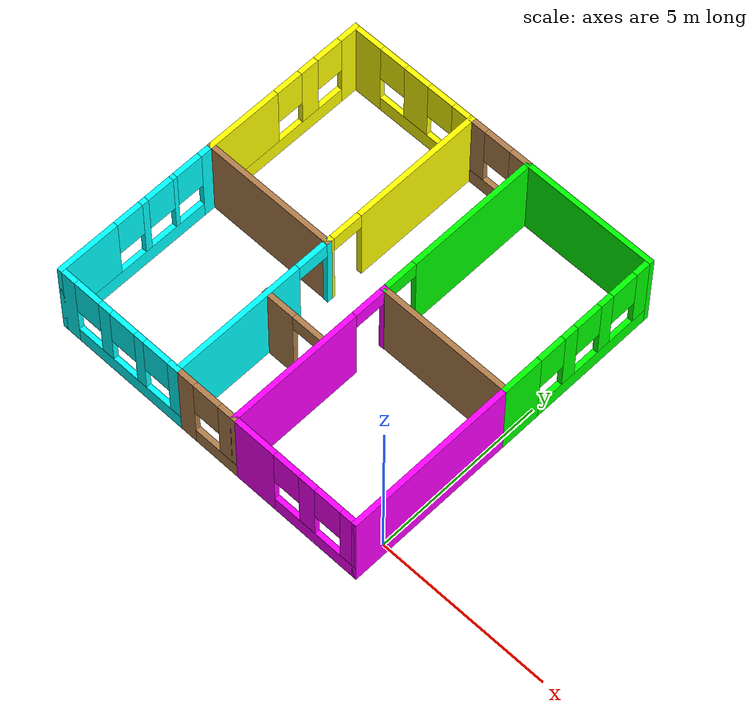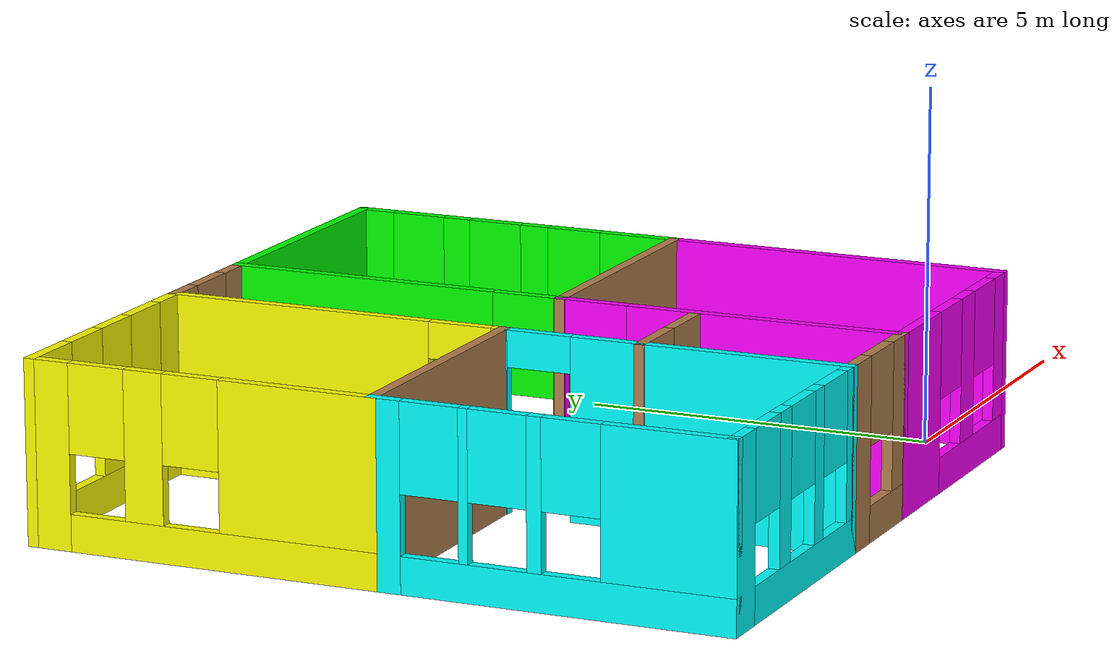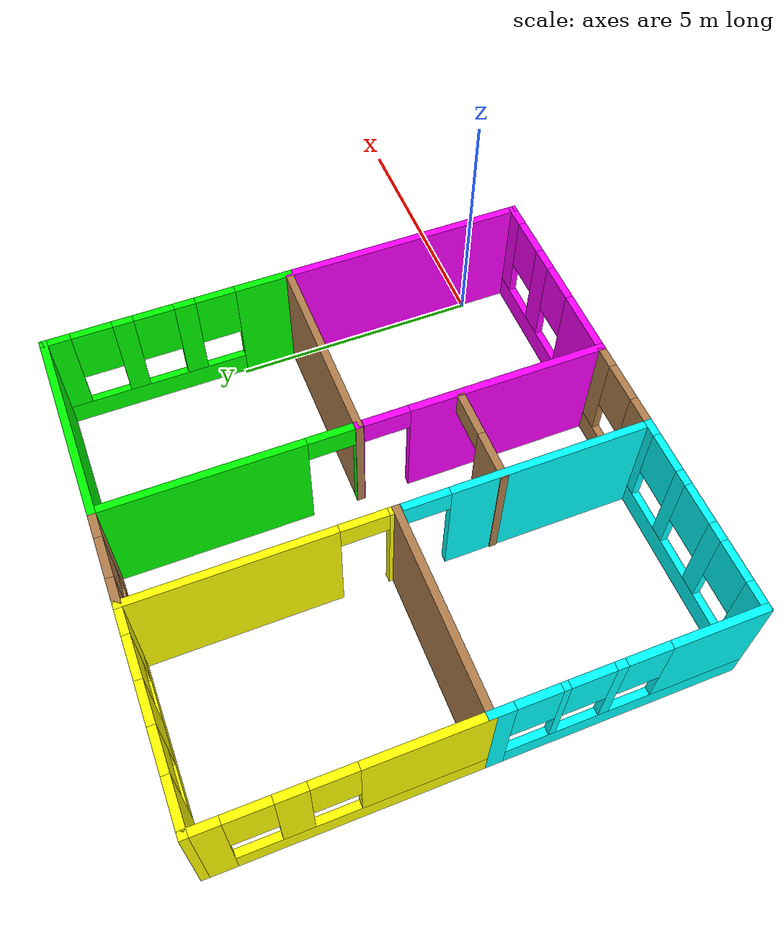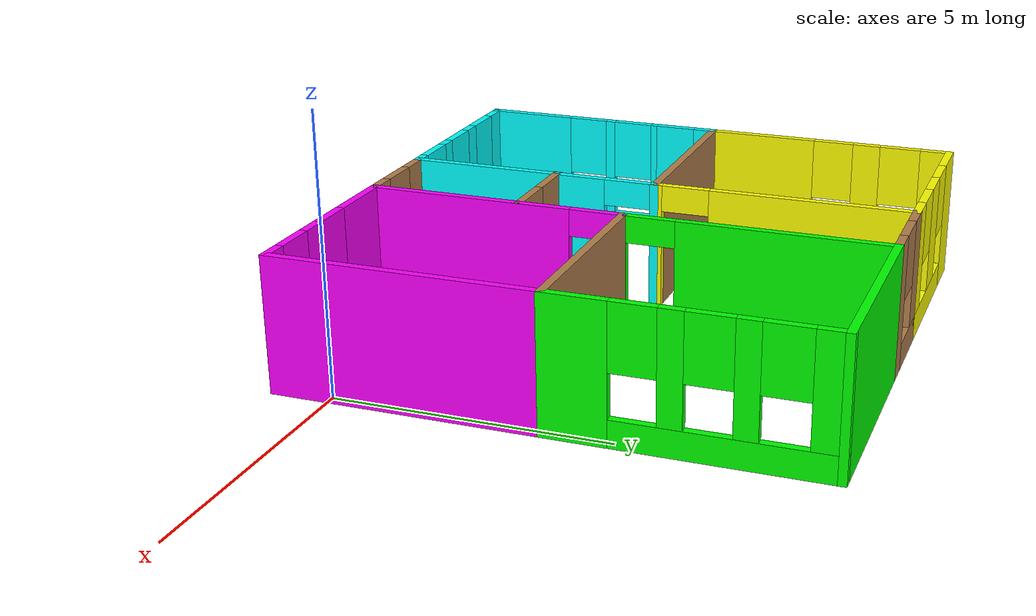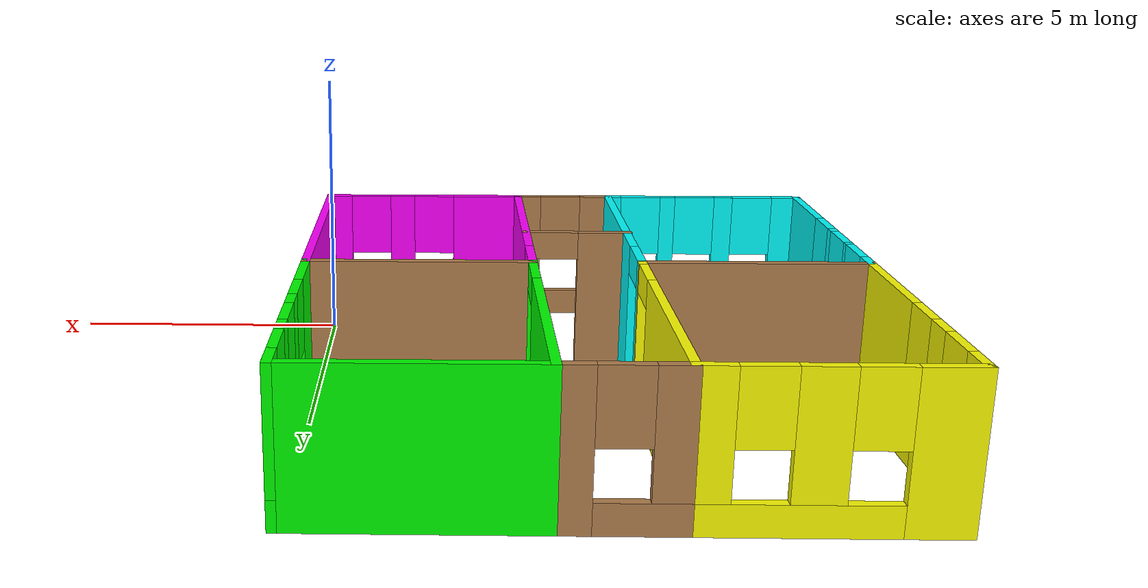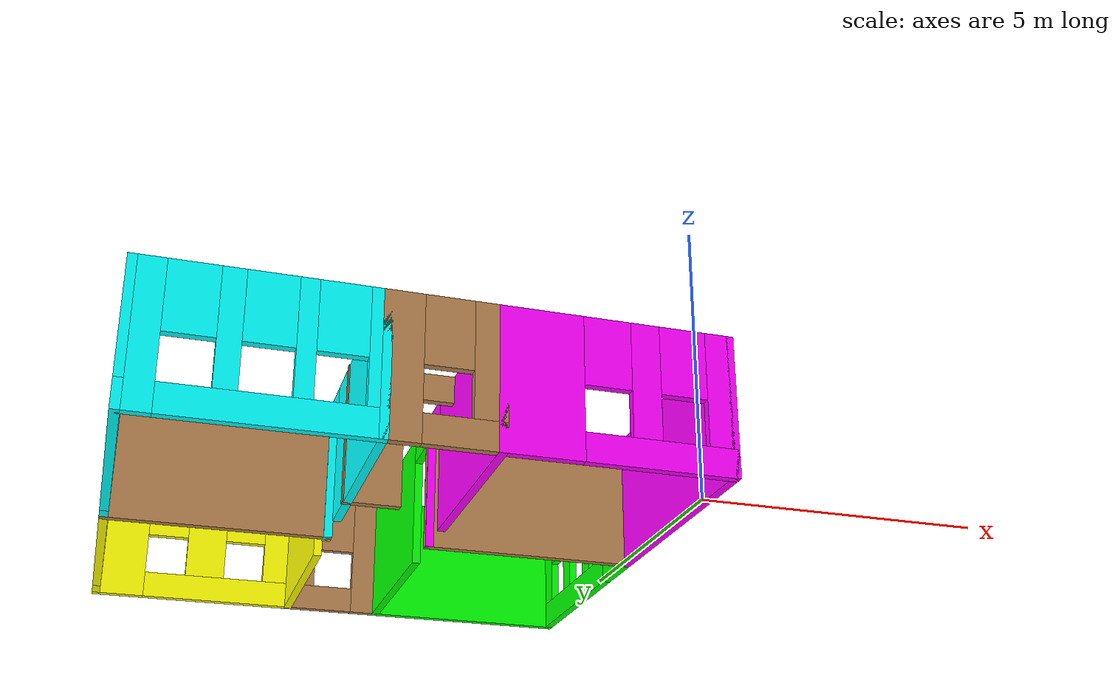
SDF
<?xml version='1.0'?>
<sdf version='1.6'>
  <model name='mybuilding'>
    <pose frame=''>-4.65558 3.83994 0 0 -0 0</pose>
    <link name='Wall_10'>
      <pose frame=''>-4.775 -2.425 0 0 0 -1.5708</pose>
      <visual name='Wall_10_Visual_0'>
        <pose frame=''>-2.26286 0 1.25 0 -0 0</pose>
        <geometry>
          <box>
            <size>0.47429 0.15 2.5</size>
          </box>
        </geometry>
        <material>
          <script>
            <uri>file://media/materials/scripts/gazebo.material</uri>
            <name>Gazebo/Grey</name>
          </script>
          <ambient>0 1 1 1</ambient>
        </material>
        <meta>
          <layer>0</layer>
        </meta>
      </visual>
      <collision name='Wall_10_Collision_0'>
        <geometry>
          <box>
            <size>0.47429 0.15 2.5</size>
          </box>
        </geometry>
        <pose frame=''>-2.26286 0 1.25 0 -0 0</pose>
      </collision>
      <visual name='Wall_10_Visual_1'>
        <pose frame=''>0.237145 0 0.25 0 -0 0</pose>
        <geometry>
          <box>
            <size>4.52571 0.15 0.5</size>
          </box>
        </geometry>
        <material>
          <script>
            <uri>file://media/materials/scripts/gazebo.material</uri>
            <name>Gazebo/Grey</name>
          </script>
          <ambient>0 1 1 1</ambient>
        </material>
        <meta>
          <layer>0</layer>
        </meta>
      </visual>
      <collision name='Wall_10_Collision_1'>
        <geometry>
          <box>
            <size>4.52571 0.15 0.5</size>
          </box>
        </geometry>
        <pose frame=''>0.237145 0 0.25 0 -0 0</pose>
      </collision>
      <visual name='Wall_10_Visual_2'>
        <pose frame=''>-1.16222 0 1.5 0 -0 0</pose>
        <geometry>
          <box>
            <size>0.126973 0.15 2</size>
          </box>
        </geometry>
        <material>
          <script>
            <uri>file://media/materials/scripts/gazebo.material</uri>
            <name>Gazebo/Grey</name>
          </script>
          <ambient>0 1 1 1</ambient>
        </material>
        <meta>
          <layer>0</layer>
        </meta>
      </visual>
      <collision name='Wall_10_Collision_2'>
        <geometry>
          <box>
            <size>0.126973 0.15 2</size>
          </box>
        </geometry>
        <pose frame=''>-1.16222 0 1.5 0 -0 0</pose>
      </collision>
      <visual name='Wall_10_Visual_3'>
        <pose frame=''>-0.20027 0 1.5 0 -0 0</pose>
        <geometry>
          <box>
            <size>0.196934 0.15 2</size>
          </box>
        </geometry>
        <material>
          <script>
            <uri>file://media/materials/scripts/gazebo.material</uri>
            <name>Gazebo/Grey</name>
          </script>
          <ambient>0 1 1 1</ambient>
        </material>
        <meta>
          <layer>0</layer>
        </meta>
      </visual>
      <collision name='Wall_10_Collision_3'>
        <geometry>
          <box>
            <size>0.196934 0.15 2</size>
          </box>
        </geometry>
        <pose frame=''>-0.20027 0 1.5 0 -0 0</pose>
      </collision>
      <visual name='Wall_10_Visual_4'>
        <pose frame=''>1.5991 0 1.5 0 -0 0</pose>
        <geometry>
          <box>
            <size>1.8018 0.15 2</size>
          </box>
        </geometry>
        <material>
          <script>
            <uri>file://media/materials/scripts/gazebo.material</uri>
            <name>Gazebo/Grey</name>
          </script>
          <ambient>0 1 1 1</ambient>
        </material>
        <meta>
          <layer>0</layer>
        </meta>
      </visual>
      <collision name='Wall_10_Collision_4'>
        <geometry>
          <box>
            <size>1.8018 0.15 2</size>
          </box>
        </geometry>
        <pose frame=''>1.5991 0 1.5 0 -0 0</pose>
      </collision>
      <visual name='Wall_10_Visual_5'>
        <pose frame=''>-1.62571 0 1.9 0 -0 0</pose>
        <geometry>
          <box>
            <size>0.8 0.15 1.2</size>
          </box>
        </geometry>
        <material>
          <script>
            <uri>file://media/materials/scripts/gazebo.material</uri>
            <name>Gazebo/Grey</name>
          </script>
          <ambient>0 1 1 1</ambient>
        </material>
        <meta>
          <layer>0</layer>
        </meta>
      </visual>
      <collision name='Wall_10_Collision_5'>
        <geometry>
          <box>
            <size>0.8 0.15 1.2</size>
          </box>
        </geometry>
        <pose frame=''>-1.62571 0 1.9 0 -0 0</pose>
      </collision>
      <visual name='Wall_10_Visual_6'>
        <pose frame=''>-0.698737 0 1.9 0 -0 0</pose>
        <geometry>
          <box>
            <size>0.8 0.15 1.2</size>
          </box>
        </geometry>
        <material>
          <script>
            <uri>file://media/materials/scripts/gazebo.material</uri>
            <name>Gazebo/Grey</name>
          </script>
          <ambient>0 1 1 1</ambient>
        </material>
        <meta>
          <layer>0</layer>
        </meta>
      </visual>
      <collision name='Wall_10_Collision_6'>
        <geometry>
          <box>
            <size>0.8 0.15 1.2</size>
          </box>
        </geometry>
        <pose frame=''>-0.698737 0 1.9 0 -0 0</pose>
      </collision>
      <visual name='Wall_10_Visual_7'>
        <pose frame=''>0.298197 0 1.9 0 -0 0</pose>
        <geometry>
          <box>
            <size>0.8 0.15 1.2</size>
          </box>
        </geometry>
        <material>
          <script>
            <uri>file://media/materials/scripts/gazebo.material</uri>
            <name>Gazebo/Grey</name>
          </script>
          <ambient>0 1 1 1</ambient>
        </material>
        <meta>
          <layer>0</layer>
        </meta>
      </visual>
      <collision name='Wall_10_Collision_7'>
        <geometry>
          <box>
            <size>0.8 0.15 1.2</size>
          </box>
        </geometry>
        <pose frame=''>0.298197 0 1.9 0 -0 0</pose>
      </collision>
    </link>
    <link name='Wall_11'>
      <pose frame=''>-2.85 -4.85 0 0 -0 0</pose>
      <visual name='Wall_11_Visual_0'>
        <pose frame=''>-1.70776 0 1.25 0 -0 0</pose>
        <geometry>
          <box>
            <size>0.584483 0.15 2.5</size>
          </box>
        </geometry>
        <material>
          <script>
            <uri>file://media/materials/scripts/gazebo.material</uri>
            <name>Gazebo/Grey</name>
          </script>
          <ambient>0 1 1 1</ambient>
        </material>
        <meta>
          <layer>0</layer>
        </meta>
      </visual>
      <collision name='Wall_11_Collision_0'>
        <geometry>
          <box>
            <size>0.584483 0.15 2.5</size>
          </box>
        </geometry>
        <pose frame=''>-1.70776 0 1.25 0 -0 0</pose>
      </collision>
      <visual name='Wall_11_Visual_1'>
        <pose frame=''>0.292241 0 0.25 0 -0 0</pose>
        <geometry>
          <box>
            <size>3.41552 0.15 0.5</size>
          </box>
        </geometry>
        <material>
          <script>
            <uri>file://media/materials/scripts/gazebo.material</uri>
            <name>Gazebo/Grey</name>
          </script>
          <ambient>0 1 1 1</ambient>
        </material>
        <meta>
          <layer>0</layer>
        </meta>
      </visual>
      <collision name='Wall_11_Collision_1'>
        <geometry>
          <box>
            <size>3.41552 0.15 0.5</size>
          </box>
        </geometry>
        <pose frame=''>0.292241 0 0.25 0 -0 0</pose>
      </collision>
      <visual name='Wall_11_Visual_2'>
        <pose frame=''>-0.4296 0 1.5 0 -0 0</pose>
        <geometry>
          <box>
            <size>0.371834 0.15 2</size>
          </box>
        </geometry>
        <material>
          <script>
            <uri>file://media/materials/scripts/gazebo.material</uri>
            <name>Gazebo/Grey</name>
          </script>
          <ambient>0 1 1 1</ambient>
        </material>
        <meta>
          <layer>0</layer>
        </meta>
      </visual>
      <collision name='Wall_11_Collision_2'>
        <geometry>
          <box>
            <size>0.371834 0.15 2</size>
          </box>
        </geometry>
        <pose frame=''>-0.4296 0 1.5 0 -0 0</pose>
      </collision>
      <visual name='Wall_11_Visual_3'>
        <pose frame=''>0.707254 0 1.5 0 -0 0</pose>
        <geometry>
          <box>
            <size>0.301874 0.15 2</size>
          </box>
        </geometry>
        <material>
          <script>
            <uri>file://media/materials/scripts/gazebo.material</uri>
            <name>Gazebo/Grey</name>
          </script>
          <ambient>0 1 1 1</ambient>
        </material>
        <meta>
          <layer>0</layer>
        </meta>
      </visual>
      <collision name='Wall_11_Collision_3'>
        <geometry>
          <box>
            <size>0.301874 0.15 2</size>
          </box>
        </geometry>
        <pose frame=''>0.707254 0 1.5 0 -0 0</pose>
      </collision>
      <visual name='Wall_11_Visual_4'>
        <pose frame=''>1.8291 0 1.5 0 -0 0</pose>
        <geometry>
          <box>
            <size>0.341809 0.15 2</size>
          </box>
        </geometry>
        <material>
          <script>
            <uri>file://media/materials/scripts/gazebo.material</uri>
            <name>Gazebo/Grey</name>
          </script>
          <ambient>0 1 1 1</ambient>
        </material>
        <meta>
          <layer>0</layer>
        </meta>
      </visual>
      <collision name='Wall_11_Collision_4'>
        <geometry>
          <box>
            <size>0.341809 0.15 2</size>
          </box>
        </geometry>
        <pose frame=''>1.8291 0 1.5 0 -0 0</pose>
      </collision>
      <visual name='Wall_11_Visual_5'>
        <pose frame=''>-1.01552 0 1.9 0 -0 0</pose>
        <geometry>
          <box>
            <size>0.8 0.15 1.2</size>
          </box>
        </geometry>
        <material>
          <script>
            <uri>file://media/materials/scripts/gazebo.material</uri>
            <name>Gazebo/Grey</name>
          </script>
          <ambient>0 1 1 1</ambient>
        </material>
        <meta>
          <layer>0</layer>
        </meta>
      </visual>
      <collision name='Wall_11_Collision_5'>
        <geometry>
          <box>
            <size>0.8 0.15 1.2</size>
          </box>
        </geometry>
        <pose frame=''>-1.01552 0 1.9 0 -0 0</pose>
      </collision>
      <visual name='Wall_11_Visual_6'>
        <pose frame=''>0.156317 0 1.9 0 -0 0</pose>
        <geometry>
          <box>
            <size>0.8 0.15 1.2</size>
          </box>
        </geometry>
        <material>
          <script>
            <uri>file://media/materials/scripts/gazebo.material</uri>
            <name>Gazebo/Grey</name>
          </script>
          <ambient>0 1 1 1</ambient>
        </material>
        <meta>
          <layer>0</layer>
        </meta>
      </visual>
      <collision name='Wall_11_Collision_6'>
        <geometry>
          <box>
            <size>0.8 0.15 1.2</size>
          </box>
        </geometry>
        <pose frame=''>0.156317 0 1.9 0 -0 0</pose>
      </collision>
      <visual name='Wall_11_Visual_7'>
        <pose frame=''>1.25819 0 1.9 0 -0 0</pose>
        <geometry>
          <box>
            <size>0.8 0.15 1.2</size>
          </box>
        </geometry>
        <material>
          <script>
            <uri>file://media/materials/scripts/gazebo.material</uri>
            <name>Gazebo/Grey</name>
          </script>
          <ambient>0 1 1 1</ambient>
        </material>
        <meta>
          <layer>0</layer>
        </meta>
      </visual>
      <collision name='Wall_11_Collision_7'>
        <geometry>
          <box>
            <size>0.8 0.15 1.2</size>
          </box>
        </geometry>
        <pose frame=''>1.25819 0 1.9 0 -0 0</pose>
      </collision>
    </link>
    <link name='Wall_12'>
      <pose frame=''>0 -4.85 0 0 -0 0</pose>
      <visual name='Wall_12_Visual_0'>
        <pose frame=''>-0.673871 0 1.25 0 -0 0</pose>
        <geometry>
          <box>
            <size>0.652257 0.15 2.5</size>
          </box>
        </geometry>
        <material>
          <script>
            <uri>file://media/materials/scripts/gazebo.material</uri>
            <name>Gazebo/Wood</name>
          </script>
          <ambient>1 1 1 1</ambient>
        </material>
        <meta>
          <layer>0</layer>
        </meta>
      </visual>
      <collision name='Wall_12_Collision_0'>
        <geometry>
          <box>
            <size>0.652257 0.15 2.5</size>
          </box>
        </geometry>
        <pose frame=''>-0.673871 0 1.25 0 -0 0</pose>
      </collision>
      <visual name='Wall_12_Visual_1'>
        <pose frame=''>0.326129 0 0.25 0 -0 0</pose>
        <geometry>
          <box>
            <size>1.34774 0.15 0.5</size>
          </box>
        </geometry>
        <material>
          <script>
            <uri>file://media/materials/scripts/gazebo.material</uri>
            <name>Gazebo/Wood</name>
          </script>
          <ambient>1 1 1 1</ambient>
        </material>
        <meta>
          <layer>0</layer>
        </meta>
      </visual>
      <collision name='Wall_12_Collision_1'>
        <geometry>
          <box>
            <size>1.34774 0.15 0.5</size>
          </box>
        </geometry>
        <pose frame=''>0.326129 0 0.25 0 -0 0</pose>
      </collision>
      <visual name='Wall_12_Visual_2'>
        <pose frame=''>0.726129 0 1.5 0 -0 0</pose>
        <geometry>
          <box>
            <size>0.547743 0.15 2</size>
          </box>
        </geometry>
        <material>
          <script>
            <uri>file://media/materials/scripts/gazebo.material</uri>
            <name>Gazebo/Wood</name>
          </script>
          <ambient>1 1 1 1</ambient>
        </material>
        <meta>
          <layer>0</layer>
        </meta>
      </visual>
      <collision name='Wall_12_Collision_2'>
        <geometry>
          <box>
            <size>0.547743 0.15 2</size>
          </box>
        </geometry>
        <pose frame=''>0.726129 0 1.5 0 -0 0</pose>
      </collision>
      <visual name='Wall_12_Visual_3'>
        <pose frame=''>0.052257 0 1.9 0 -0 0</pose>
        <geometry>
          <box>
            <size>0.8 0.15 1.2</size>
          </box>
        </geometry>
        <material>
          <script>
            <uri>file://media/materials/scripts/gazebo.material</uri>
            <name>Gazebo/Wood</name>
          </script>
          <ambient>1 1 1 1</ambient>
        </material>
        <meta>
          <layer>0</layer>
        </meta>
      </visual>
      <collision name='Wall_12_Collision_3'>
        <geometry>
          <box>
            <size>0.8 0.15 1.2</size>
          </box>
        </geometry>
        <pose frame=''>0.052257 0 1.9 0 -0 0</pose>
      </collision>
    </link>
    <link name='Wall_13'>
      <pose frame=''>2.85 -4.85 0 0 -0 0</pose>
      <visual name='Wall_13_Visual_0'>
        <pose frame=''>-1.30461 0 1.25 0 -0 0</pose>
        <geometry>
          <box>
            <size>1.39079 0.15 2.5</size>
          </box>
        </geometry>
        <material>
          <script>
            <uri>file://media/materials/scripts/gazebo.material</uri>
            <name>Gazebo/Grey</name>
          </script>
          <ambient>1 0 1 1</ambient>
        </material>
        <meta>
          <layer>0</layer>
        </meta>
      </visual>
      <collision name='Wall_13_Collision_0'>
        <geometry>
          <box>
            <size>1.39079 0.15 2.5</size>
          </box>
        </geometry>
        <pose frame=''>-1.30461 0 1.25 0 -0 0</pose>
      </collision>
      <visual name='Wall_13_Visual_1'>
        <pose frame=''>0.695393 0 0.25 0 -0 0</pose>
        <geometry>
          <box>
            <size>2.60921 0.15 0.5</size>
          </box>
        </geometry>
        <material>
          <script>
            <uri>file://media/materials/scripts/gazebo.material</uri>
            <name>Gazebo/Grey</name>
          </script>
          <ambient>1 0 1 1</ambient>
        </material>
        <meta>
          <layer>0</layer>
        </meta>
      </visual>
      <collision name='Wall_13_Collision_1'>
        <geometry>
          <box>
            <size>2.60921 0.15 0.5</size>
          </box>
        </geometry>
        <pose frame=''>0.695393 0 0.25 0 -0 0</pose>
      </collision>
      <visual name='Wall_13_Visual_2'>
        <pose frame=''>0.437919 0 1.5 0 -0 0</pose>
        <geometry>
          <box>
            <size>0.494265 0.15 2</size>
          </box>
        </geometry>
        <material>
          <script>
            <uri>file://media/materials/scripts/gazebo.material</uri>
            <name>Gazebo/Grey</name>
          </script>
          <ambient>1 0 1 1</ambient>
        </material>
        <meta>
          <layer>0</layer>
        </meta>
      </visual>
      <collision name='Wall_13_Collision_2'>
        <geometry>
          <box>
            <size>0.494265 0.15 2</size>
          </box>
        </geometry>
        <pose frame=''>0.437919 0 1.5 0 -0 0</pose>
      </collision>
      <visual name='Wall_13_Visual_3'>
        <pose frame=''>1.74253 0 1.5 0 -0 0</pose>
        <geometry>
          <box>
            <size>0.514949 0.15 2</size>
          </box>
        </geometry>
        <material>
          <script>
            <uri>file://media/materials/scripts/gazebo.material</uri>
            <name>Gazebo/Grey</name>
          </script>
          <ambient>1 0 1 1</ambient>
        </material>
        <meta>
          <layer>0</layer>
        </meta>
      </visual>
      <collision name='Wall_13_Collision_3'>
        <geometry>
          <box>
            <size>0.514949 0.15 2</size>
          </box>
        </geometry>
        <pose frame=''>1.74253 0 1.5 0 -0 0</pose>
      </collision>
      <visual name='Wall_13_Visual_4'>
        <pose frame=''>-0.209213 0 1.9 0 -0 0</pose>
        <geometry>
          <box>
            <size>0.8 0.15 1.2</size>
          </box>
        </geometry>
        <material>
          <script>
            <uri>file://media/materials/scripts/gazebo.material</uri>
            <name>Gazebo/Grey</name>
          </script>
          <ambient>1 0 1 1</ambient>
        </material>
        <meta>
          <layer>0</layer>
        </meta>
      </visual>
      <collision name='Wall_13_Collision_4'>
        <geometry>
          <box>
            <size>0.8 0.15 1.2</size>
          </box>
        </geometry>
        <pose frame=''>-0.209213 0 1.9 0 -0 0</pose>
      </collision>
      <visual name='Wall_13_Visual_5'>
        <pose frame=''>1.08505 0 1.9 0 -0 0</pose>
        <geometry>
          <box>
            <size>0.8 0.15 1.2</size>
          </box>
        </geometry>
        <material>
          <script>
            <uri>file://media/materials/scripts/gazebo.material</uri>
            <name>Gazebo/Grey</name>
          </script>
          <ambient>1 0 1 1</ambient>
        </material>
        <meta>
          <layer>0</layer>
        </meta>
      </visual>
      <collision name='Wall_13_Collision_5'>
        <geometry>
          <box>
            <size>0.8 0.15 1.2</size>
          </box>
        </geometry>
        <pose frame=''>1.08505 0 1.9 0 -0 0</pose>
      </collision>
    </link>
    <link name='Wall_14'>
      <collision name='Wall_14_Collision'>
        <geometry>
          <box>
            <size>5 0.15 2.5</size>
          </box>
        </geometry>
        <pose frame=''>0 0 1.25 0 -0 0</pose>
      </collision>
      <visual name='Wall_14_Visual'>
        <pose frame=''>0 0 1.25 0 -0 0</pose>
        <geometry>
          <box>
            <size>5 0.15 2.5</size>
          </box>
        </geometry>
        <material>
          <script>
            <uri>file://media/materials/scripts/gazebo.material</uri>
            <name>Gazebo/Grey</name>
          </script>
          <ambient>1 0 1 1</ambient>
        </material>
        <meta>
          <layer>0</layer>
        </meta>
      </visual>
      <pose frame=''>4.775 -2.425 0 0 -0 1.5708</pose>
    </link>
    <link name='Wall_15'>
      <pose frame=''>4.775 2.425 0 0 -0 1.5708</pose>
      <visual name='Wall_15_Visual_0'>
        <pose frame=''>-1.9078 0 1.25 0 -0 0</pose>
        <geometry>
          <box>
            <size>1.1844 0.15 2.5</size>
          </box>
        </geometry>
        <material>
          <script>
            <uri>file://media/materials/scripts/gazebo.material</uri>
            <name>Gazebo/Grey</name>
          </script>
          <ambient>0 1 0 1</ambient>
        </material>
        <meta>
          <layer>0</layer>
        </meta>
      </visual>
      <collision name='Wall_15_Collision_0'>
        <geometry>
          <box>
            <size>1.1844 0.15 2.5</size>
          </box>
        </geometry>
        <pose frame=''>-1.9078 0 1.25 0 -0 0</pose>
      </collision>
      <visual name='Wall_15_Visual_1'>
        <pose frame=''>0.592199 0 0.25 0 -0 0</pose>
        <geometry>
          <box>
            <size>3.8156 0.15 0.5</size>
          </box>
        </geometry>
        <material>
          <script>
            <uri>file://media/materials/scripts/gazebo.material</uri>
            <name>Gazebo/Grey</name>
          </script>
          <ambient>0 1 0 1</ambient>
        </material>
        <meta>
          <layer>0</layer>
        </meta>
      </visual>
      <collision name='Wall_15_Collision_1'>
        <geometry>
          <box>
            <size>3.8156 0.15 0.5</size>
          </box>
        </geometry>
        <pose frame=''>0.592199 0 0.25 0 -0 0</pose>
      </collision>
      <visual name='Wall_15_Visual_2'>
        <pose frame=''>-0.30345 0 1.5 0 -0 0</pose>
        <geometry>
          <box>
            <size>0.424304 0.15 2</size>
          </box>
        </geometry>
        <material>
          <script>
            <uri>file://media/materials/scripts/gazebo.material</uri>
            <name>Gazebo/Grey</name>
          </script>
          <ambient>0 1 0 1</ambient>
        </material>
        <meta>
          <layer>0</layer>
        </meta>
      </visual>
      <collision name='Wall_15_Collision_2'>
        <geometry>
          <box>
            <size>0.424304 0.15 2</size>
          </box>
        </geometry>
        <pose frame=''>-0.30345 0 1.5 0 -0 0</pose>
      </collision>
      <visual name='Wall_15_Visual_3'>
        <pose frame=''>0.912109 0 1.5 0 -0 0</pose>
        <geometry>
          <box>
            <size>0.406815 0.15 2</size>
          </box>
        </geometry>
        <material>
          <script>
            <uri>file://media/materials/scripts/gazebo.material</uri>
            <name>Gazebo/Grey</name>
          </script>
          <ambient>0 1 0 1</ambient>
        </material>
        <meta>
          <layer>0</layer>
        </meta>
      </visual>
      <collision name='Wall_15_Collision_3'>
        <geometry>
          <box>
            <size>0.406815 0.15 2</size>
          </box>
        </geometry>
        <pose frame=''>0.912109 0 1.5 0 -0 0</pose>
      </collision>
      <visual name='Wall_15_Visual_4'>
        <pose frame=''>2.20776 0 1.5 0 -0 0</pose>
        <geometry>
          <box>
            <size>0.584483 0.15 2</size>
          </box>
        </geometry>
        <material>
          <script>
            <uri>file://media/materials/scripts/gazebo.material</uri>
            <name>Gazebo/Grey</name>
          </script>
          <ambient>0 1 0 1</ambient>
        </material>
        <meta>
          <layer>0</layer>
        </meta>
      </visual>
      <collision name='Wall_15_Collision_4'>
        <geometry>
          <box>
            <size>0.584483 0.15 2</size>
          </box>
        </geometry>
        <pose frame=''>2.20776 0 1.5 0 -0 0</pose>
      </collision>
      <visual name='Wall_15_Visual_5'>
        <pose frame=''>-0.915602 0 1.9 0 -0 0</pose>
        <geometry>
          <box>
            <size>0.8 0.15 1.2</size>
          </box>
        </geometry>
        <material>
          <script>
            <uri>file://media/materials/scripts/gazebo.material</uri>
            <name>Gazebo/Grey</name>
          </script>
          <ambient>0 1 0 1</ambient>
        </material>
        <meta>
          <layer>0</layer>
        </meta>
      </visual>
      <collision name='Wall_15_Collision_5'>
        <geometry>
          <box>
            <size>0.8 0.15 1.2</size>
          </box>
        </geometry>
        <pose frame=''>-0.915602 0 1.9 0 -0 0</pose>
      </collision>
      <visual name='Wall_15_Visual_6'>
        <pose frame=''>0.308702 0 1.9 0 -0 0</pose>
        <geometry>
          <box>
            <size>0.8 0.15 1.2</size>
          </box>
        </geometry>
        <material>
          <script>
            <uri>file://media/materials/scripts/gazebo.material</uri>
            <name>Gazebo/Grey</name>
          </script>
          <ambient>0 1 0 1</ambient>
        </material>
        <meta>
          <layer>0</layer>
        </meta>
      </visual>
      <collision name='Wall_15_Collision_6'>
        <geometry>
          <box>
            <size>0.8 0.15 1.2</size>
          </box>
        </geometry>
        <pose frame=''>0.308702 0 1.9 0 -0 0</pose>
      </collision>
      <visual name='Wall_15_Visual_7'>
        <pose frame=''>1.51552 0 1.9 0 -0 0</pose>
        <geometry>
          <box>
            <size>0.8 0.15 1.2</size>
          </box>
        </geometry>
        <material>
          <script>
            <uri>file://media/materials/scripts/gazebo.material</uri>
            <name>Gazebo/Grey</name>
          </script>
          <ambient>0 1 0 1</ambient>
        </material>
        <meta>
          <layer>0</layer>
        </meta>
      </visual>
      <collision name='Wall_15_Collision_7'>
        <geometry>
          <box>
            <size>0.8 0.15 1.2</size>
          </box>
        </geometry>
        <pose frame=''>1.51552 0 1.9 0 -0 0</pose>
      </collision>
    </link>
    <link name='Wall_16'>
      <collision name='Wall_16_Collision'>
        <geometry>
          <box>
            <size>4 0.15 2.5</size>
          </box>
        </geometry>
        <pose frame=''>0 0 1.25 0 -0 0</pose>
      </collision>
      <visual name='Wall_16_Visual'>
        <pose frame=''>0 0 1.25 0 -0 0</pose>
        <geometry>
          <box>
            <size>4 0.15 2.5</size>
          </box>
        </geometry>
        <material>
          <script>
            <uri>file://media/materials/scripts/gazebo.material</uri>
            <name>Gazebo/Grey</name>
          </script>
          <ambient>0 1 0 1</ambient>
        </material>
        <meta>
          <layer>0</layer>
        </meta>
      </visual>
      <pose frame=''>2.85 4.85 0 0 -0 3.14159</pose>
    </link>
    <link name='Wall_17'>
      <pose frame=''>0 4.85 0 0 -0 3.14159</pose>
      <visual name='Wall_17_Visual_0'>
        <pose frame=''>-0.691148 0 1.25 0 -0 0</pose>
        <geometry>
          <box>
            <size>0.617703 0.15 2.5</size>
          </box>
        </geometry>
        <material>
          <script>
            <uri>file://media/materials/scripts/gazebo.material</uri>
            <name>Gazebo/Wood</name>
          </script>
          <ambient>1 1 1 1</ambient>
        </material>
        <meta>
          <layer>0</layer>
        </meta>
      </visual>
      <collision name='Wall_17_Collision_0'>
        <geometry>
          <box>
            <size>0.617703 0.15 2.5</size>
          </box>
        </geometry>
        <pose frame=''>-0.691148 0 1.25 0 -0 0</pose>
      </collision>
      <visual name='Wall_17_Visual_1'>
        <pose frame=''>0.308852 0 0.25 0 -0 0</pose>
        <geometry>
          <box>
            <size>1.3823 0.15 0.5</size>
          </box>
        </geometry>
        <material>
          <script>
            <uri>file://media/materials/scripts/gazebo.material</uri>
            <name>Gazebo/Wood</name>
          </script>
          <ambient>1 1 1 1</ambient>
        </material>
        <meta>
          <layer>0</layer>
        </meta>
      </visual>
      <collision name='Wall_17_Collision_1'>
        <geometry>
          <box>
            <size>1.3823 0.15 0.5</size>
          </box>
        </geometry>
        <pose frame=''>0.308852 0 0.25 0 -0 0</pose>
      </collision>
      <visual name='Wall_17_Visual_2'>
        <pose frame=''>0.708852 0 1.5 0 -0 0</pose>
        <geometry>
          <box>
            <size>0.582297 0.15 2</size>
          </box>
        </geometry>
        <material>
          <script>
            <uri>file://media/materials/scripts/gazebo.material</uri>
            <name>Gazebo/Wood</name>
          </script>
          <ambient>1 1 1 1</ambient>
        </material>
        <meta>
          <layer>0</layer>
        </meta>
      </visual>
      <collision name='Wall_17_Collision_2'>
        <geometry>
          <box>
            <size>0.582297 0.15 2</size>
          </box>
        </geometry>
        <pose frame=''>0.708852 0 1.5 0 -0 0</pose>
      </collision>
      <visual name='Wall_17_Visual_3'>
        <pose frame=''>0.017703 0 1.9 0 -0 0</pose>
        <geometry>
          <box>
            <size>0.8 0.15 1.2</size>
          </box>
        </geometry>
        <material>
          <script>
            <uri>file://media/materials/scripts/gazebo.material</uri>
            <name>Gazebo/Wood</name>
          </script>
          <ambient>1 1 1 1</ambient>
        </material>
        <meta>
          <layer>0</layer>
        </meta>
      </visual>
      <collision name='Wall_17_Collision_3'>
        <geometry>
          <box>
            <size>0.8 0.15 1.2</size>
          </box>
        </geometry>
        <pose frame=''>0.017703 0 1.9 0 -0 0</pose>
      </collision>
    </link>
    <link name='Wall_18'>
      <pose frame=''>-0.925 2.425 0 0 0 -1.5708</pose>
      <visual name='Wall_18_Visual_0'>
        <pose frame=''>-0.562457 0 1.25 0 -0 0</pose>
        <geometry>
          <box>
            <size>3.87509 0.15 2.5</size>
          </box>
        </geometry>
        <material>
          <script>
            <uri>file://media/materials/scripts/gazebo.material</uri>
            <name>Gazebo/Grey</name>
          </script>
          <ambient>1 1 0 1</ambient>
        </material>
        <meta>
          <layer>0</layer>
        </meta>
      </visual>
      <collision name='Wall_18_Collision_0'>
        <geometry>
          <box>
            <size>3.87509 0.15 2.5</size>
          </box>
        </geometry>
        <pose frame=''>-0.562457 0 1.25 0 -0 0</pose>
      </collision>
      <visual name='Wall_18_Visual_1'>
        <pose frame=''>2.38754 0 1.25 0 -0 0</pose>
        <geometry>
          <box>
            <size>0.224914 0.15 2.5</size>
          </box>
        </geometry>
        <material>
          <script>
            <uri>file://media/materials/scripts/gazebo.material</uri>
            <name>Gazebo/Grey</name>
          </script>
          <ambient>1 1 0 1</ambient>
        </material>
        <meta>
          <layer>0</layer>
        </meta>
      </visual>
      <collision name='Wall_18_Collision_1'>
        <geometry>
          <box>
            <size>0.224914 0.15 2.5</size>
          </box>
        </geometry>
        <pose frame=''>2.38754 0 1.25 0 -0 0</pose>
      </collision>
      <visual name='Wall_18_Visual_2'>
        <pose frame=''>1.82509 0 2.25 0 -0 0</pose>
        <geometry>
          <box>
            <size>0.9 0.15 0.5</size>
          </box>
        </geometry>
        <material>
          <script>
            <uri>file://media/materials/scripts/gazebo.material</uri>
            <name>Gazebo/Grey</name>
          </script>
          <ambient>1 1 0 1</ambient>
        </material>
        <meta>
          <layer>0</layer>
        </meta>
      </visual>
      <collision name='Wall_18_Collision_2'>
        <geometry>
          <box>
            <size>0.9 0.15 0.5</size>
          </box>
        </geometry>
        <pose frame=''>1.82509 0 2.25 0 -0 0</pose>
      </collision>
    </link>
    <link name='Wall_19'>
      <collision name='Wall_19_Collision'>
        <geometry>
          <box>
            <size>4 0.15 2.5</size>
          </box>
        </geometry>
        <pose frame=''>0 0 1.25 0 -0 0</pose>
      </collision>
      <visual name='Wall_19_Visual'>
        <pose frame=''>0 0 1.25 0 -0 0</pose>
        <geometry>
          <box>
            <size>4 0.15 2.5</size>
          </box>
        </geometry>
        <material>
          <script>
            <uri>file://media/materials/scripts/gazebo.material</uri>
            <name>Gazebo/Wood</name>
          </script>
          <ambient>1 1 1 1</ambient>
        </material>
        <meta>
          <layer>0</layer>
        </meta>
      </visual>
      <pose frame=''>-2.85 0 0 0 -0 3.14159</pose>
    </link>
    <link name='Wall_21'>
      <pose frame=''>-2.85 4.85 0 0 -0 0</pose>
      <visual name='Wall_21_Visual_0'>
        <pose frame=''>-1.50662 0 1.25 0 -0 0</pose>
        <geometry>
          <box>
            <size>0.986754 0.15 2.5</size>
          </box>
        </geometry>
        <material>
          <script>
            <uri>file://media/materials/scripts/gazebo.material</uri>
            <name>Gazebo/Grey</name>
          </script>
          <ambient>1 1 0 1</ambient>
        </material>
        <meta>
          <layer>0</layer>
        </meta>
      </visual>
      <collision name='Wall_21_Collision_0'>
        <geometry>
          <box>
            <size>0.986754 0.15 2.5</size>
          </box>
        </geometry>
        <pose frame=''>-1.50662 0 1.25 0 -0 0</pose>
      </collision>
      <visual name='Wall_21_Visual_1'>
        <pose frame=''>0.493377 0 0.25 0 -0 0</pose>
        <geometry>
          <box>
            <size>3.01325 0.15 0.5</size>
          </box>
        </geometry>
        <material>
          <script>
            <uri>file://media/materials/scripts/gazebo.material</uri>
            <name>Gazebo/Grey</name>
          </script>
          <ambient>1 1 0 1</ambient>
        </material>
        <meta>
          <layer>0</layer>
        </meta>
      </visual>
      <collision name='Wall_21_Collision_1'>
        <geometry>
          <box>
            <size>3.01325 0.15 0.5</size>
          </box>
        </geometry>
        <pose frame=''>0.493377 0 0.25 0 -0 0</pose>
      </collision>
      <visual name='Wall_21_Visual_2'>
        <pose frame=''>0.173807 0 1.5 0 -0 0</pose>
        <geometry>
          <box>
            <size>0.774106 0.15 2</size>
          </box>
        </geometry>
        <material>
          <script>
            <uri>file://media/materials/scripts/gazebo.material</uri>
            <name>Gazebo/Grey</name>
          </script>
          <ambient>1 1 0 1</ambient>
        </material>
        <meta>
          <layer>0</layer>
        </meta>
      </visual>
      <collision name='Wall_21_Collision_2'>
        <geometry>
          <box>
            <size>0.774106 0.15 2</size>
          </box>
        </geometry>
        <pose frame=''>0.173807 0 1.5 0 -0 0</pose>
      </collision>
      <visual name='Wall_21_Visual_3'>
        <pose frame=''>1.68043 0 1.5 0 -0 0</pose>
        <geometry>
          <box>
            <size>0.63914 0.15 2</size>
          </box>
        </geometry>
        <material>
          <script>
            <uri>file://media/materials/scripts/gazebo.material</uri>
            <name>Gazebo/Grey</name>
          </script>
          <ambient>1 1 0 1</ambient>
        </material>
        <meta>
          <layer>0</layer>
        </meta>
      </visual>
      <collision name='Wall_21_Collision_3'>
        <geometry>
          <box>
            <size>0.63914 0.15 2</size>
          </box>
        </geometry>
        <pose frame=''>1.68043 0 1.5 0 -0 0</pose>
      </collision>
      <visual name='Wall_21_Visual_4'>
        <pose frame=''>-0.613246 0 1.9 0 -0 0</pose>
        <geometry>
          <box>
            <size>0.8 0.15 1.2</size>
          </box>
        </geometry>
        <material>
          <script>
            <uri>file://media/materials/scripts/gazebo.material</uri>
            <name>Gazebo/Grey</name>
          </script>
          <ambient>1 1 0 1</ambient>
        </material>
        <meta>
          <layer>0</layer>
        </meta>
      </visual>
      <collision name='Wall_21_Collision_4'>
        <geometry>
          <box>
            <size>0.8 0.15 1.2</size>
          </box>
        </geometry>
        <pose frame=''>-0.613246 0 1.9 0 -0 0</pose>
      </collision>
      <visual name='Wall_21_Visual_5'>
        <pose frame=''>0.96086 0 1.9 0 -0 0</pose>
        <geometry>
          <box>
            <size>0.8 0.15 1.2</size>
          </box>
        </geometry>
        <material>
          <script>
            <uri>file://media/materials/scripts/gazebo.material</uri>
            <name>Gazebo/Grey</name>
          </script>
          <ambient>1 1 0 1</ambient>
        </material>
        <meta>
          <layer>0</layer>
        </meta>
      </visual>
      <collision name='Wall_21_Collision_5'>
        <geometry>
          <box>
            <size>0.8 0.15 1.2</size>
          </box>
        </geometry>
        <pose frame=''>0.96086 0 1.9 0 -0 0</pose>
      </collision>
    </link>
    <link name='Wall_23'>
      <collision name='Wall_23_Collision'>
        <geometry>
          <box>
            <size>4 0.15 2.5</size>
          </box>
        </geometry>
        <pose frame=''>0 0 1.25 0 -0 0</pose>
      </collision>
      <visual name='Wall_23_Visual'>
        <pose frame=''>0 0 1.25 0 -0 0</pose>
        <geometry>
          <box>
            <size>4 0.15 2.5</size>
          </box>
        </geometry>
        <material>
          <script>
            <uri>file://media/materials/scripts/gazebo.material</uri>
            <name>Gazebo/Wood</name>
          </script>
          <ambient>1 1 1 1</ambient>
        </material>
        <meta>
          <layer>0</layer>
        </meta>
      </visual>
      <pose frame=''>2.85 0 0 0 -0 3.14159</pose>
    </link>
    <link name='Wall_24'>
      <pose frame=''>0.925 -2.425 0 0 0 -1.5708</pose>
      <visual name='Wall_24_Visual_0'>
        <pose frame=''>-2.41903 0 1.25 0 -0 0</pose>
        <geometry>
          <box>
            <size>0.161939 0.15 2.5</size>
          </box>
        </geometry>
        <material>
          <script>
            <uri>file://media/materials/scripts/gazebo.material</uri>
            <name>Gazebo/Grey</name>
          </script>
          <ambient>1 0 1 1</ambient>
        </material>
        <meta>
          <layer>0</layer>
        </meta>
      </visual>
      <collision name='Wall_24_Collision_0'>
        <geometry>
          <box>
            <size>0.161939 0.15 2.5</size>
          </box>
        </geometry>
        <pose frame=''>-2.41903 0 1.25 0 -0 0</pose>
      </collision>
      <visual name='Wall_24_Visual_1'>
        <pose frame=''>0.53097 0 1.25 0 -0 0</pose>
        <geometry>
          <box>
            <size>3.93806 0.15 2.5</size>
          </box>
        </geometry>
        <material>
          <script>
            <uri>file://media/materials/scripts/gazebo.material</uri>
            <name>Gazebo/Grey</name>
          </script>
          <ambient>1 0 1 1</ambient>
        </material>
        <meta>
          <layer>0</layer>
        </meta>
      </visual>
      <collision name='Wall_24_Collision_1'>
        <geometry>
          <box>
            <size>3.93806 0.15 2.5</size>
          </box>
        </geometry>
        <pose frame=''>0.53097 0 1.25 0 -0 0</pose>
      </collision>
      <visual name='Wall_24_Visual_2'>
        <pose frame=''>-1.88806 0 2.25 0 -0 0</pose>
        <geometry>
          <box>
            <size>0.9 0.15 0.5</size>
          </box>
        </geometry>
        <material>
          <script>
            <uri>file://media/materials/scripts/gazebo.material</uri>
            <name>Gazebo/Grey</name>
          </script>
          <ambient>1 0 1 1</ambient>
        </material>
        <meta>
          <layer>0</layer>
        </meta>
      </visual>
      <collision name='Wall_24_Collision_2'>
        <geometry>
          <box>
            <size>0.9 0.15 0.5</size>
          </box>
        </geometry>
        <pose frame=''>-1.88806 0 2.25 0 -0 0</pose>
      </collision>
    </link>
    <link name='Wall_26'>
      <pose frame=''>0.925 2.425 0 0 -0 1.5708</pose>
      <visual name='Wall_26_Visual_0'>
        <pose frame=''>-2.42252 0 1.25 0 -0 0</pose>
        <geometry>
          <box>
            <size>0.154954 0.15 2.5</size>
          </box>
        </geometry>
        <material>
          <script>
            <uri>file://media/materials/scripts/gazebo.material</uri>
            <name>Gazebo/Grey</name>
          </script>
          <ambient>0 1 0 1</ambient>
        </material>
        <meta>
          <layer>0</layer>
        </meta>
      </visual>
      <collision name='Wall_26_Collision_0'>
        <geometry>
          <box>
            <size>0.154954 0.15 2.5</size>
          </box>
        </geometry>
        <pose frame=''>-2.42252 0 1.25 0 -0 0</pose>
      </collision>
      <visual name='Wall_26_Visual_1'>
        <pose frame=''>0.527477 0 1.25 0 -0 0</pose>
        <geometry>
          <box>
            <size>3.94505 0.15 2.5</size>
          </box>
        </geometry>
        <material>
          <script>
            <uri>file://media/materials/scripts/gazebo.material</uri>
            <name>Gazebo/Grey</name>
          </script>
          <ambient>0 1 0 1</ambient>
        </material>
        <meta>
          <layer>0</layer>
        </meta>
      </visual>
      <collision name='Wall_26_Collision_1'>
        <geometry>
          <box>
            <size>3.94505 0.15 2.5</size>
          </box>
        </geometry>
        <pose frame=''>0.527477 0 1.25 0 -0 0</pose>
      </collision>
      <visual name='Wall_26_Visual_2'>
        <pose frame=''>-1.89505 0 2.25 0 -0 0</pose>
        <geometry>
          <box>
            <size>0.9 0.15 0.5</size>
          </box>
        </geometry>
        <material>
          <script>
            <uri>file://media/materials/scripts/gazebo.material</uri>
            <name>Gazebo/Grey</name>
          </script>
          <ambient>0 1 0 1</ambient>
        </material>
        <meta>
          <layer>0</layer>
        </meta>
      </visual>
      <collision name='Wall_26_Collision_2'>
        <geometry>
          <box>
            <size>0.9 0.15 0.5</size>
          </box>
        </geometry>
        <pose frame=''>-1.89505 0 2.25 0 -0 0</pose>
      </collision>
    </link>
    <link name='Wall_28'>
      <pose frame=''>-0.925 -2.425 0 0 0 -1.5708</pose>
      <visual name='Wall_28_Visual_0'>
        <pose frame=''>-2.41903 0 1.25 0 -0 0</pose>
        <geometry>
          <box>
            <size>0.161939 0.15 2.5</size>
          </box>
        </geometry>
        <material>
          <script>
            <uri>file://media/materials/scripts/gazebo.material</uri>
            <name>Gazebo/Grey</name>
          </script>
          <ambient>0 1 1 1</ambient>
        </material>
        <meta>
          <layer>0</layer>
        </meta>
      </visual>
      <collision name='Wall_28_Collision_0'>
        <geometry>
          <box>
            <size>0.161939 0.15 2.5</size>
          </box>
        </geometry>
        <pose frame=''>-2.41903 0 1.25 0 -0 0</pose>
      </collision>
      <visual name='Wall_28_Visual_1'>
        <pose frame=''>0.53097 0 1.25 0 -0 0</pose>
        <geometry>
          <box>
            <size>3.93806 0.15 2.5</size>
          </box>
        </geometry>
        <material>
          <script>
            <uri>file://media/materials/scripts/gazebo.material</uri>
            <name>Gazebo/Grey</name>
          </script>
          <ambient>0 1 1 1</ambient>
        </material>
        <meta>
          <layer>0</layer>
        </meta>
      </visual>
      <collision name='Wall_28_Collision_1'>
        <geometry>
          <box>
            <size>3.93806 0.15 2.5</size>
          </box>
        </geometry>
        <pose frame=''>0.53097 0 1.25 0 -0 0</pose>
      </collision>
      <visual name='Wall_28_Visual_2'>
        <pose frame=''>-1.88806 0 2.25 0 -0 0</pose>
        <geometry>
          <box>
            <size>0.9 0.15 0.5</size>
          </box>
        </geometry>
        <material>
          <script>
            <uri>file://media/materials/scripts/gazebo.material</uri>
            <name>Gazebo/Grey</name>
          </script>
          <ambient>0 1 1 1</ambient>
        </material>
        <meta>
          <layer>0</layer>
        </meta>
      </visual>
      <collision name='Wall_28_Collision_2'>
        <geometry>
          <box>
            <size>0.9 0.15 0.5</size>
          </box>
        </geometry>
        <pose frame=''>-1.88806 0 2.25 0 -0 0</pose>
      </collision>
    </link>
    <link name='Wall_30'>
      <pose frame=''>-0.019676 -1.97113 0 0 -0 0</pose>
      <visual name='Wall_30_Visual_0'>
        <pose frame=''>-0.505388 0 1.25 0 -0 0</pose>
        <geometry>
          <box>
            <size>0.989225 0.15 2.5</size>
          </box>
        </geometry>
        <material>
          <script>
            <uri>file://media/materials/scripts/gazebo.material</uri>
            <name>Gazebo/Wood</name>
          </script>
          <ambient>1 1 1 1</ambient>
        </material>
        <meta>
          <layer>0</layer>
        </meta>
      </visual>
      <collision name='Wall_30_Collision_0'>
        <geometry>
          <box>
            <size>0.989225 0.15 2.5</size>
          </box>
        </geometry>
        <pose frame=''>-0.505388 0 1.25 0 -0 0</pose>
      </collision>
      <visual name='Wall_30_Visual_1'>
        <pose frame=''>0.944612 0 1.25 0 -0 0</pose>
        <geometry>
          <box>
            <size>0.110775 0.15 2.5</size>
          </box>
        </geometry>
        <material>
          <script>
            <uri>file://media/materials/scripts/gazebo.material</uri>
            <name>Gazebo/Wood</name>
          </script>
          <ambient>1 1 1 1</ambient>
        </material>
        <meta>
          <layer>0</layer>
        </meta>
      </visual>
      <collision name='Wall_30_Collision_1'>
        <geometry>
          <box>
            <size>0.110775 0.15 2.5</size>
          </box>
        </geometry>
        <pose frame=''>0.944612 0 1.25 0 -0 0</pose>
      </collision>
      <visual name='Wall_30_Visual_2'>
        <pose frame=''>0.439225 0 2.25 0 -0 0</pose>
        <geometry>
          <box>
            <size>0.9 0.15 0.5</size>
          </box>
        </geometry>
        <material>
          <script>
            <uri>file://media/materials/scripts/gazebo.material</uri>
            <name>Gazebo/Wood</name>
          </script>
          <ambient>1 1 1 1</ambient>
        </material>
        <meta>
          <layer>0</layer>
        </meta>
      </visual>
      <collision name='Wall_30_Collision_2'>
        <geometry>
          <box>
            <size>0.9 0.15 0.5</size>
          </box>
        </geometry>
        <pose frame=''>0.439225 0 2.25 0 -0 0</pose>
      </collision>
    </link>
    <link name='Wall_9'>
      <pose frame=''>-4.775 2.425 0 0 0 -1.5708</pose>
      <visual name='Wall_9_Visual_0'>
        <pose frame=''>-2.18152 0 1.25 0 -0 0</pose>
        <geometry>
          <box>
            <size>0.636953 0.15 2.5</size>
          </box>
        </geometry>
        <material>
          <script>
            <uri>file://media/materials/scripts/gazebo.material</uri>
            <name>Gazebo/Grey</name>
          </script>
          <ambient>1 1 0 1</ambient>
        </material>
        <meta>
          <layer>0</layer>
        </meta>
      </visual>
      <collision name='Wall_9_Collision_0'>
        <geometry>
          <box>
            <size>0.636953 0.15 2.5</size>
          </box>
        </geometry>
        <pose frame=''>-2.18152 0 1.25 0 -0 0</pose>
      </collision>
      <visual name='Wall_9_Visual_1'>
        <pose frame=''>0.318477 0 0.25 0 -0 0</pose>
        <geometry>
          <box>
            <size>4.36305 0.15 0.5</size>
          </box>
        </geometry>
        <material>
          <script>
            <uri>file://media/materials/scripts/gazebo.material</uri>
            <name>Gazebo/Grey</name>
          </script>
          <ambient>1 1 0 1</ambient>
        </material>
        <meta>
          <layer>0</layer>
        </meta>
      </visual>
      <collision name='Wall_9_Collision_1'>
        <geometry>
          <box>
            <size>4.36305 0.15 0.5</size>
          </box>
        </geometry>
        <pose frame=''>0.318477 0 0.25 0 -0 0</pose>
      </collision>
      <visual name='Wall_9_Visual_2'>
        <pose frame=''>-0.789679 0 1.5 0 -0 0</pose>
        <geometry>
          <box>
            <size>0.546735 0.15 2</size>
          </box>
        </geometry>
        <material>
          <script>
            <uri>file://media/materials/scripts/gazebo.material</uri>
            <name>Gazebo/Grey</name>
          </script>
          <ambient>1 1 0 1</ambient>
        </material>
        <meta>
          <layer>0</layer>
        </meta>
      </visual>
      <collision name='Wall_9_Collision_2'>
        <geometry>
          <box>
            <size>0.546735 0.15 2</size>
          </box>
        </geometry>
        <pose frame=''>-0.789679 0 1.5 0 -0 0</pose>
      </collision>
      <visual name='Wall_9_Visual_3'>
        <pose frame=''>1.39184 0 1.5 0 -0 0</pose>
        <geometry>
          <box>
            <size>2.21631 0.15 2</size>
          </box>
        </geometry>
        <material>
          <script>
            <uri>file://media/materials/scripts/gazebo.material</uri>
            <name>Gazebo/Grey</name>
          </script>
          <ambient>1 1 0 1</ambient>
        </material>
        <meta>
          <layer>0</layer>
        </meta>
      </visual>
      <collision name='Wall_9_Collision_3'>
        <geometry>
          <box>
            <size>2.21631 0.15 2</size>
          </box>
        </geometry>
        <pose frame=''>1.39184 0 1.5 0 -0 0</pose>
      </collision>
      <visual name='Wall_9_Visual_4'>
        <pose frame=''>-1.46305 0 1.9 0 -0 0</pose>
        <geometry>
          <box>
            <size>0.8 0.15 1.2</size>
          </box>
        </geometry>
        <material>
          <script>
            <uri>file://media/materials/scripts/gazebo.material</uri>
            <name>Gazebo/Grey</name>
          </script>
          <ambient>1 1 0 1</ambient>
        </material>
        <meta>
          <layer>0</layer>
        </meta>
      </visual>
      <collision name='Wall_9_Collision_4'>
        <geometry>
          <box>
            <size>0.8 0.15 1.2</size>
          </box>
        </geometry>
        <pose frame=''>-1.46305 0 1.9 0 -0 0</pose>
      </collision>
      <visual name='Wall_9_Visual_5'>
        <pose frame=''>-0.116312 0 1.9 0 -0 0</pose>
        <geometry>
          <box>
            <size>0.8 0.15 1.2</size>
          </box>
        </geometry>
        <material>
          <script>
            <uri>file://media/materials/scripts/gazebo.material</uri>
            <name>Gazebo/Grey</name>
          </script>
          <ambient>1 1 0 1</ambient>
        </material>
        <meta>
          <layer>0</layer>
        </meta>
      </visual>
      <collision name='Wall_9_Collision_5'>
        <geometry>
          <box>
            <size>0.8 0.15 1.2</size>
          </box>
        </geometry>
        <pose frame=''>-0.116312 0 1.9 0 -0 0</pose>
      </collision>
    </link>
    <static>1</static>
  </model>
</sdf>
